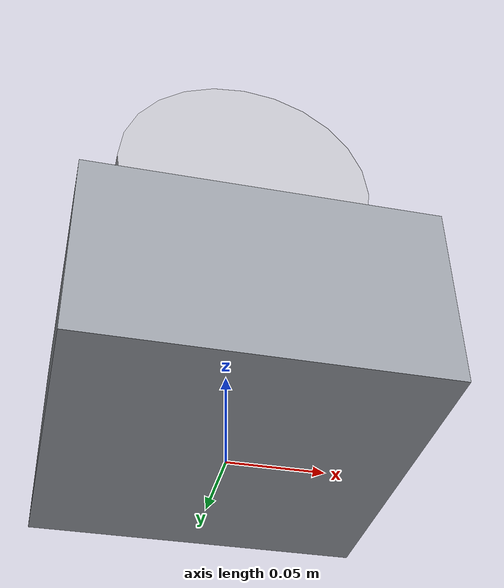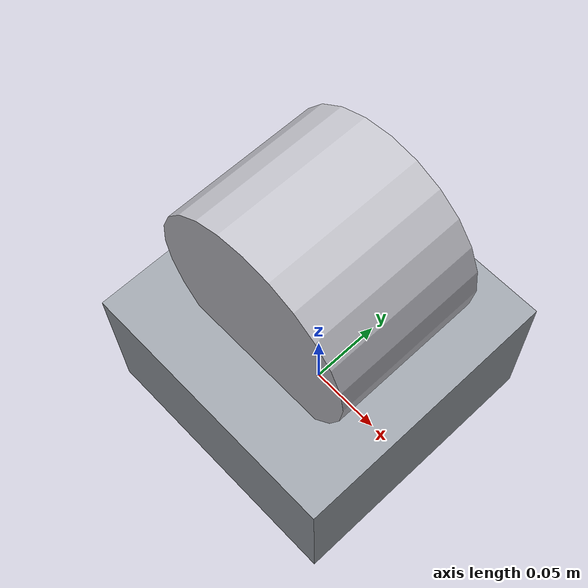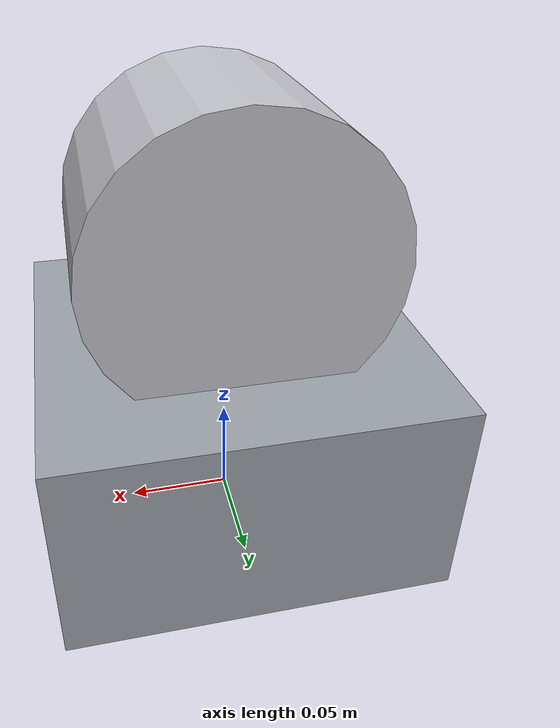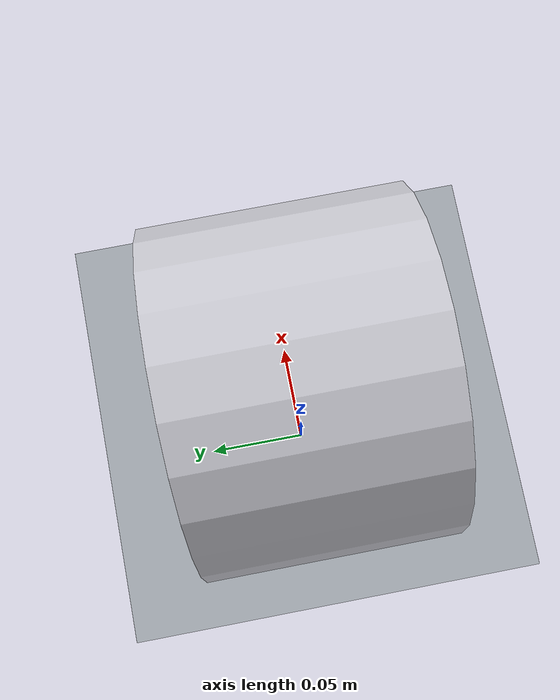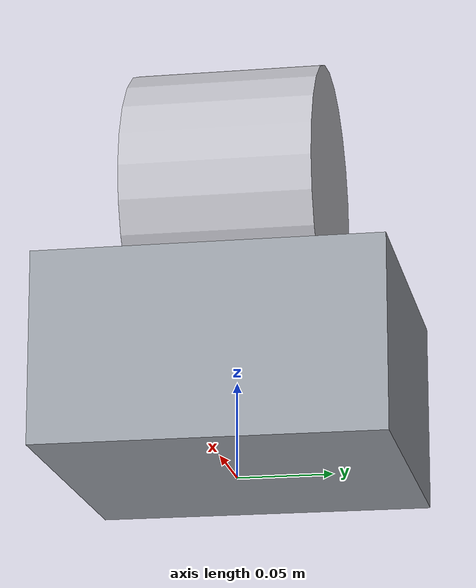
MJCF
<?xml version="1.0" encoding="utf-8"?>
<mujoco model="tablet_coating_pan">
  <compiler angle="radian" autolimits="true"/>
  <default>
    <default class="body"><geom contype="1" conaffinity="1"/></default>
  </default>
  <worldbody>
    <body name="base">
      <geom type="box" size="0.09 0.09 0.05" pos="0 0 0.05" rgba="0.6 0.62 0.65 1" class="body"/>
      <body name="drum" pos="0 0 0.15">
        <joint name="drum_joint" type="hinge" axis="0 1 0" range="-3.14159 3.14159" damping="0.5" frictionloss="0.2"/>
  <geom type="cylinder" size="0.07 0.05" pos="0 0 0" rgba="0.75 0.75 0.78 1" class="body" quat="0.7071068 0.7071068 0 0"/>
      </body>
    </body>
  </worldbody>
</mujoco>
